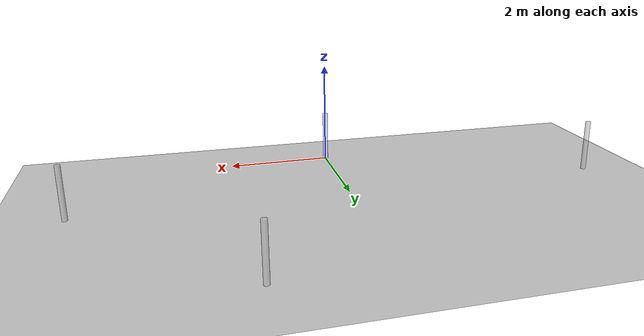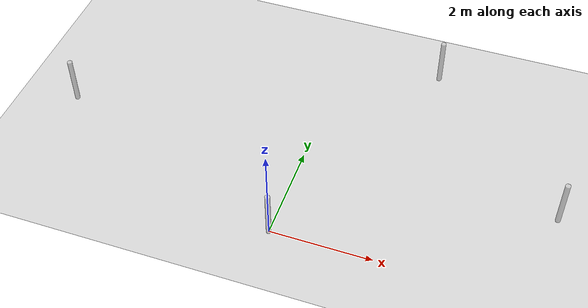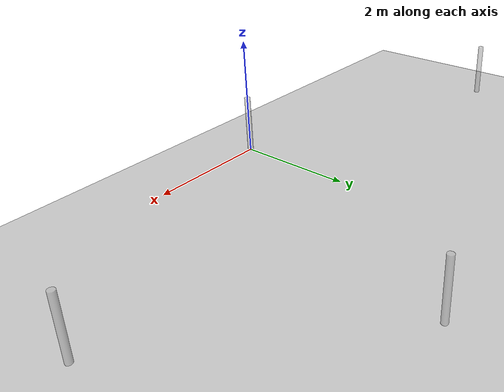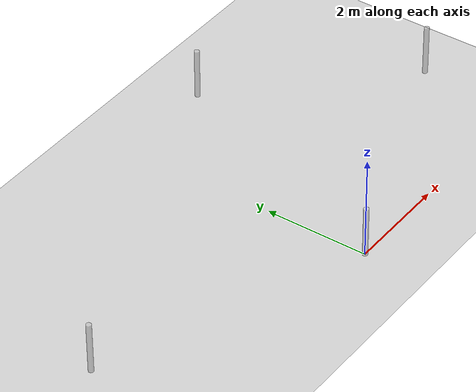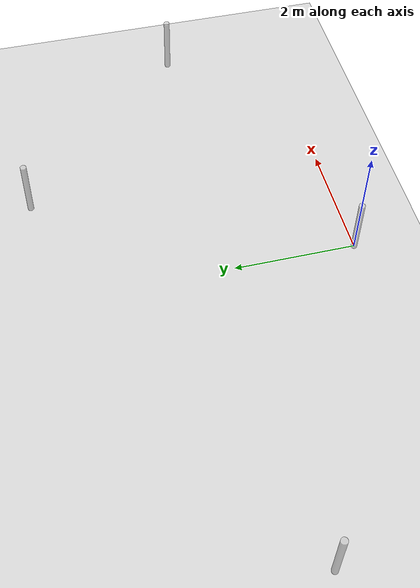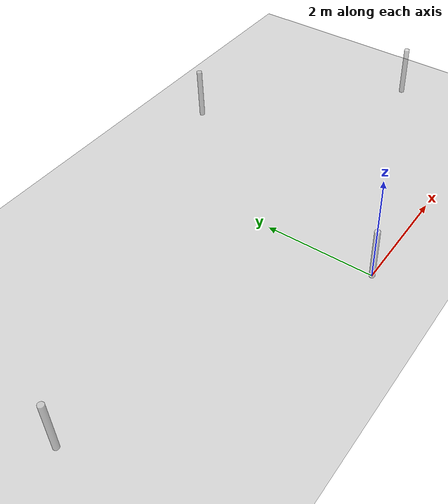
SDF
<sdf version="1.6">
 <world name="default">
  <light name="sun" type="directional">
   <pose>0 0 10 0 -0 0</pose>
   <diffuse>0.8 0.8 0.8 1</diffuse>
   <specular>0.1 0.1 0.1 1</specular>
   <attenuation>
    <range>1000</range>
    <constant>0.9</constant>
    <linear>0.01</linear>
    <quadratic>0.001</quadratic>
   </attenuation>
   <direction>-0.5 0.5 -1</direction>
  </light>
  <model name="ground_plane">
   <static>1</static>
   <link name="link">
    <collision name="collision">
     <geometry><plane><normal>0 0 1</normal><size>100 100</size></plane></geometry>
     <surface><friction><ode><mu>100</mu><mu2>50</mu2></ode></friction></surface>
    </collision>
    <visual name="visual">
     <cast_shadows>0</cast_shadows>
     <geometry><plane><normal>0 0 1</normal><size>100 100</size></plane></geometry>
     <material>
      <script><uri>file://media/materials/scripts/gazebo.material</uri><name>Gazebo/Grey</name></script>
     </material>
    </visual>
   </link>
  </model>
  <model name="path">
   <static>true</static>
   <link name="points">
    <visual name="point1">
     <pose>0 0 .5 0 0 0</pose>
     <cast_shadows>false</cast_shadows>
     <transparency>0.5</transparency>
     <geometry><cylinder><radius>.05</radius><length>1</length></cylinder></geometry>
    </visual>
    <visual name="point2">
     <pose>5 2 .5 0 0 0</pose>
     <cast_shadows>false</cast_shadows>
     <transparency>0.5</transparency>
     <geometry><cylinder><radius>.05</radius><length>1</length></cylinder></geometry>
    </visual>
    <visual name="point3">
     <pose>2 5 .5 0 0 0</pose>
     <cast_shadows>false</cast_shadows>
     <transparency>0.5</transparency>
     <geometry><cylinder><radius>.05</radius><length>1</length></cylinder></geometry>
    </visual>
    <visual name="point4">
     <pose>-5 2 .5 0 0 0</pose>
     <cast_shadows>false</cast_shadows>
     <transparency>0.5</transparency>
     <geometry><cylinder><radius>.05</radius><length>1</length></cylinder></geometry>
    </visual>
   </link>
  </model>
  <gravity>0 0 -9.8</gravity>
  <magnetic_field>6e-06 2.3e-05 -4.2e-05</magnetic_field>
  <atmosphere type="adiabatic"/>
  <physics name="default_physics" default="0" type="ode">
   <max_step_size>0.001</max_step_size>
   <real_time_factor>1</real_time_factor>
   <real_time_update_rate>1000</real_time_update_rate>
  </physics>
  <scene><ambient>0.4 0.4 0.4 1</ambient><background>0.7 0.7 0.7 1</background><shadows>1</shadows></scene>
  <spherical_coordinates>
   <surface_model>EARTH_WGS84</surface_model>
   <latitude_deg>0</latitude_deg>
   <longitude_deg>0</longitude_deg>
   <elevation>0</elevation>
   <heading_deg>0</heading_deg>
  </spherical_coordinates>
 </world>
</sdf>
